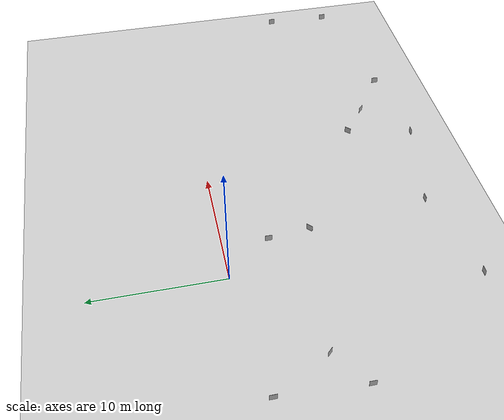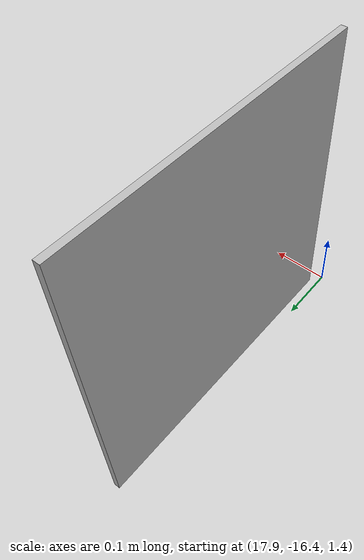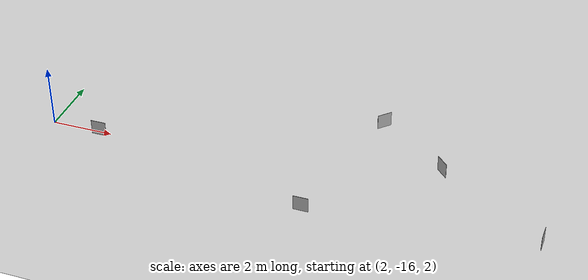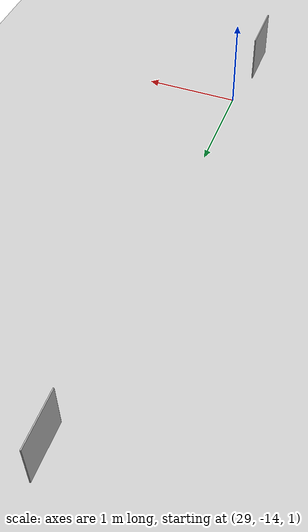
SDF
<sdf version="1.4">
 <world name="default">
  <include><uri>model://sun</uri></include>
  <include><uri>model://ground_plane</uri></include>
  <include><uri>model://marker18</uri><pose>28.79 -14.217 1.40 0 0 3.14</pose></include>
  <include><uri>model://marker19</uri><pose>14.28 -13.756 1.40 0 0 0.774</pose></include>
  <include><uri>model://marker20</uri><pose>17.92 -16.13 1.40 0 0 3.14</pose></include>
  <include><uri>model://marker21</uri><pose>2.097 -6.265 1.40 0 0 -0.816</pose></include>
  <include><uri>model://marker22</uri><pose>-10.602 -0.868 1.40 0 0 0</pose></include>
  <include><uri>model://marker23</uri><pose>-10.711 -7.043 1 0 0 0</pose></include>
  <include><uri>model://marker24</uri><pose>-8.312 -4.961 1.4 0 0 -2.368</pose></include>
  <include><uri>model://marker25</uri><pose>1.74 -3.181 1.4 0 0 3.14</pose></include>
  <include><uri>model://marker26</uri><pose>11.87 -11.935 1.4 0 0 2.368</pose></include>
  <include><uri>model://marker27</uri><pose>10.72 -16.921 1.4 0 0 1.57</pose></include>
  <include><uri>model://marker28</uri><pose>3.219 -15.4 1.4 0 0 -1.57</pose></include>
  <include><uri>model://marker29</uri><pose>-4.2517 -16.91 1.4 0 0 1.57</pose></include>
  <include><uri>model://marker30</uri><pose>28.966 -9.273 1.4 0 0 0</pose></include>
 </world>
</sdf>

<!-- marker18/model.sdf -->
<sdf version="1.6">
  <model name="Marker18">
    <static>true</static>
    <link name="link">
      <visual name="visual">
        <geometry>
          <mesh>
            <uri>file:////home/vagrant/catkin_ws/src/cp3_base/models//marker18/marker18/meshes/Marker18.dae</uri>
          </mesh>
        </geometry>
      </visual>
    </link>
  </model>
</sdf>

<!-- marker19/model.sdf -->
<sdf version="1.6">
  <model name="Marker19">
    <static>true</static>
    <link name="link">
      <visual name="visual">
        <geometry>
          <mesh>
            <uri>file:////home/vagrant/catkin_ws/src/cp3_base/models//marker19/marker19/meshes/Marker19.dae</uri>
          </mesh>
        </geometry>
      </visual>
    </link>
  </model>
</sdf>

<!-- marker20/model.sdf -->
<sdf version="1.6">
  <model name="Marker20">
    <static>true</static>
    <link name="link">
      <visual name="visual">
        <geometry>
          <mesh>
            <uri>file:////home/vagrant/catkin_ws/src/cp3_base/models//marker20/marker20/meshes/Marker20.dae</uri>
          </mesh>
        </geometry>
      </visual>
    </link>
  </model>
</sdf>

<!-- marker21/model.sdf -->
<sdf version="1.6">
  <model name="Marker21">
    <static>true</static>
    <link name="link">
      <visual name="visual">
        <geometry>
          <mesh>
            <uri>file:////home/vagrant/catkin_ws/src/cp3_base/models//marker21/marker21/meshes/Marker21.dae</uri>
          </mesh>
        </geometry>
      </visual>
    </link>
  </model>
</sdf>

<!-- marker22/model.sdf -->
<sdf version="1.6">
  <model name="Marker22">
    <static>true</static>
    <link name="link">
      <visual name="visual">
        <geometry>
          <mesh>
            <uri>file:////home/vagrant/catkin_ws/src/cp3_base/models//marker22/marker22/meshes/Marker22.dae</uri>
          </mesh>
        </geometry>
      </visual>
    </link>
  </model>
</sdf>

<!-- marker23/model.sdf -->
<sdf version="1.6">
  <model name="Marker23">
    <static>true</static>
    <link name="link">
      <visual name="visual">
        <geometry>
          <mesh>
            <uri>file:////home/vagrant/catkin_ws/src/cp3_base/models//marker23/marker23/meshes/Marker23.dae</uri>
          </mesh>
        </geometry>
      </visual>
    </link>
  </model>
</sdf>

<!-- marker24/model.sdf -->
<sdf version="1.6">
  <model name="Marker24">
    <static>true</static>
    <link name="link">
      <visual name="visual">
        <geometry>
          <mesh>
            <uri>file:////home/vagrant/catkin_ws/src/cp3_base/models//marker24/marker24/meshes/Marker24.dae</uri>
          </mesh>
        </geometry>
      </visual>
    </link>
  </model>
</sdf>

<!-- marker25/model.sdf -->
<sdf version="1.6">
  <model name="Marker25">
    <static>true</static>
    <link name="link">
      <visual name="visual">
        <geometry>
          <mesh>
            <uri>file:////home/vagrant/catkin_ws/src/cp3_base/models//marker25/marker25/meshes/Marker25.dae</uri>
          </mesh>
        </geometry>
      </visual>
    </link>
  </model>
</sdf>

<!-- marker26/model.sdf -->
<sdf version="1.6">
  <model name="Marker26">
    <static>true</static>
    <link name="link">
      <visual name="visual">
        <geometry>
          <mesh>
            <uri>file:////home/vagrant/catkin_ws/src/cp3_base/models//marker26/marker26/meshes/Marker26.dae</uri>
          </mesh>
        </geometry>
      </visual>
    </link>
  </model>
</sdf>

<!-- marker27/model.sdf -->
<sdf version="1.6">
  <model name="Marker27">
    <static>true</static>
    <link name="link">
      <visual name="visual">
        <geometry>
          <mesh>
            <uri>file:////home/vagrant/catkin_ws/src/cp3_base/models//marker27/marker27/meshes/Marker27.dae</uri>
          </mesh>
        </geometry>
      </visual>
    </link>
  </model>
</sdf>

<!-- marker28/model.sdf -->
<sdf version="1.6">
  <model name="Marker28">
    <static>true</static>
    <link name="link">
      <visual name="visual">
        <geometry>
          <mesh>
            <uri>file:////home/vagrant/catkin_ws/src/cp3_base/models//marker28/marker28/meshes/Marker28.dae</uri>
          </mesh>
        </geometry>
      </visual>
    </link>
  </model>
</sdf>

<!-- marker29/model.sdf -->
<sdf version="1.6">
  <model name="Marker29">
    <static>true</static>
    <link name="link">
      <visual name="visual">
        <geometry>
          <mesh>
            <uri>file:////home/vagrant/catkin_ws/src/cp3_base/models//marker29/marker29/meshes/Marker29.dae</uri>
          </mesh>
        </geometry>
      </visual>
    </link>
  </model>
</sdf>

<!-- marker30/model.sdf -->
<sdf version="1.6">
  <model name="Marker30">
    <static>true</static>
    <link name="link">
      <visual name="visual">
        <geometry>
          <mesh>
            <uri>file:////home/vagrant/catkin_ws/src/cp3_base/models//marker30/marker30/meshes/Marker30.dae</uri>
          </mesh>
        </geometry>
      </visual>
    </link>
  </model>
</sdf>
